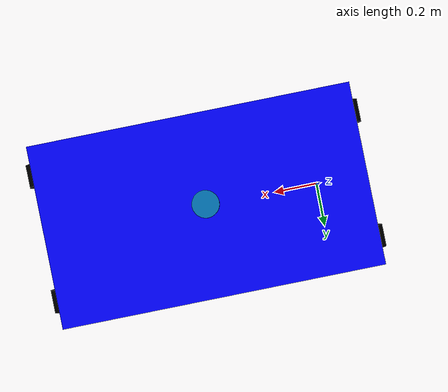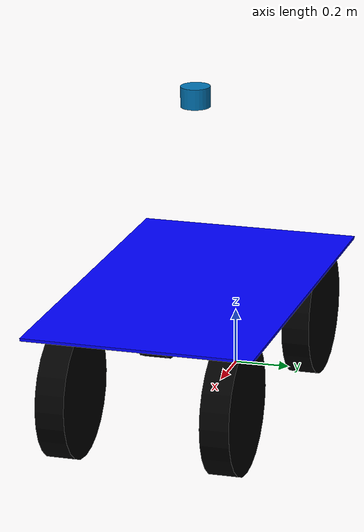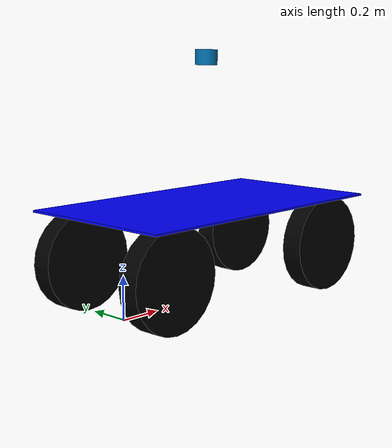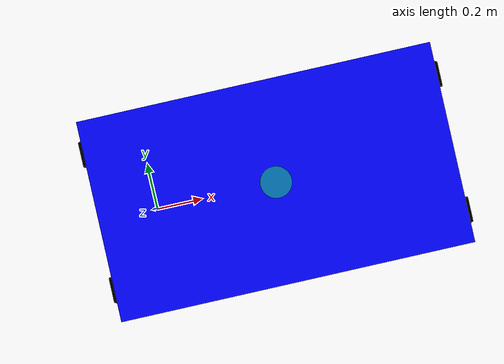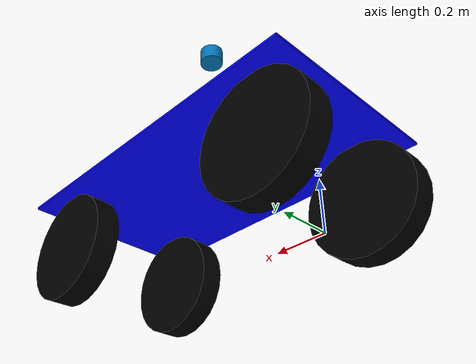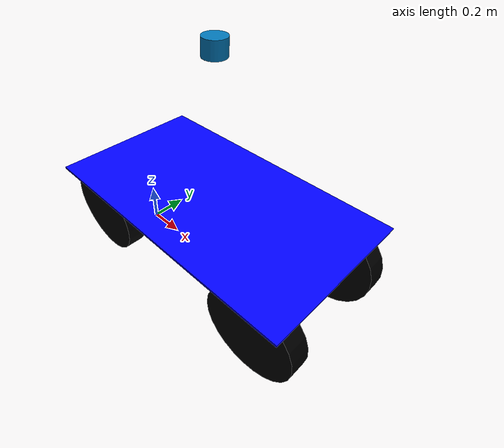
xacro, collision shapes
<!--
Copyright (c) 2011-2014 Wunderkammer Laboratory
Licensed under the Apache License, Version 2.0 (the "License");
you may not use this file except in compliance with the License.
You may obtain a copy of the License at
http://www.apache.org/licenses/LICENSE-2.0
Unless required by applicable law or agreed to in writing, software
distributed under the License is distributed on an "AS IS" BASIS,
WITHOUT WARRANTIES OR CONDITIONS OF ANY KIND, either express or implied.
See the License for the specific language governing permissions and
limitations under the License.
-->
<?xml version="1.0"?>

<robot name="em_3905" xmlns:xacro="http://www.ros.org/wiki/xacro">
  <!-- Degree-to-radian conversions -->
  <xacro:property name="degrees_45" value="0.785398163"/>
  <xacro:property name="degrees_90" value="1.57079633"/>

  <!-- chassis_length is measured along the x axis, chassis_width
       along the y axis, and chassis_height along the z axis. -->
  <xacro:property name="chassis_length" value="1.41"/>
  <xacro:property name="chassis_width" value="0.797"/>
  <xacro:property name="chassis_height" value="0.01"/>
  <xacro:property name="chassis_mass" value="2.788"/>

  <xacro:property name="hub_dia" value="0.32"/>
  <xacro:property name="tire_dia" value="0.46"/>
  <xacro:property name="tire_width" value="0.1"/>
  <xacro:property name="hex_hub_depth" value="0.02"/>
  <xacro:property name="wheel_mass" value="0.29"/>

  <xacro:property name="wheelbase" value="1.05"/>
  <xacro:property name="hex_hub_dist" value="0.625"/>
  <xacro:property name="axle_length" value="0.03"/>
  <xacro:property name="wheel_travel" value="0.46"/>
  <xacro:property name="shock_z_offset" value="0.0"/>

  <xacro:property name="shock_eff_limit" value="125.106"/>
  <xacro:property name="shock_vel_limit" value="1000"/>

  <xacro:property name="axle_eff_limit" value="51.2766"/>
  <xacro:property name="axle_vel_limit" value="244.8696"/>

  <!-- These constants are used to simulate a Traxxas 2056 servo operated at
       6 V. servo_stall_torque is measured in N m. servo_no_load_speed is
       measured in rad/s. -->
  <xacro:property name="servo_stall_torque" value="5.649"/>
  <xacro:property name="servo_no_load_speed" value="4.553"/>

  <material name="battery_mat">
    <color rgba="0 0 1 1"/>
  </material>
  <material name="chassis_mat">
    <color rgba="0 0 1 1"/>
  </material>
  <material name="tire_mat">
    <color rgba="0 0 0 1"/>
  </material>

  <!-- Null inertial element. This is needed to make the model work with
       Gazebo. -->
  <xacro:macro name="null_inertial">
    <inertial>
      <mass value="0.001"/>
      <inertia ixx="0.001" ixy="0" ixz="0" iyy="0.001" iyz="0" izz="0.001"/>
    </inertial>
  </xacro:macro>

  <!-- Inertia of a solid cuboid. Width is measured along the x axis, depth
       along the y axis, and height along the z axis. -->
  <xacro:macro name="solid_cuboid_inertial"
               params="width depth height mass *origin">
    <inertial>
      <xacro:insert_block name="origin"/>
      <mass value="${mass}"/>
      <inertia ixx="${mass * (depth * depth + height * height) / 12}"
               ixy="0" ixz="0"
               iyy="${mass * (width * width + height * height) / 12}"
               iyz="0"
               izz="${mass * (width * width + depth * depth) / 12}"/>
    </inertial>
  </xacro:macro>

  <xacro:macro name="thick_walled_tube_inertial"
               params="inner_rad outer_rad height mass">
    <inertial>
      <mass value="${mass}"/>
      <inertia ixx="${(1 / 12) * mass * (3 * (inner_rad * inner_rad +
                    outer_rad * outer_rad) + height * height)}"
               ixy="0" ixz="0"
               iyy="${(1 / 12) * mass * (3 * (inner_rad * inner_rad +
                    outer_rad * outer_rad) + height * height)}"
               iyz="0"
               izz="${mass * (inner_rad * inner_rad +
                    outer_rad * outer_rad) / 2}"/>
    </inertial>
  </xacro:macro>

  <!-- Battery -->

  <!-- Shock absorber -->
  <xacro:macro name="shock"
               params="lr_prefix fr_prefix lr_reflect fr_reflect child">
    <joint name="${lr_prefix}_${fr_prefix}_shock" type="prismatic">
      <parent link="chassis"/>
      <child link="${child}"/>

      <origin xyz="${fr_reflect * wheelbase / 2 + wheelbase / 2}
                   ${lr_reflect * ((hex_hub_dist / 2) - axle_length)}
                   ${(wheel_travel / 2) - shock_z_offset}"/>
      <axis xyz="0 0 -1"/>
      <limit lower="${-wheel_travel / 2}" upper="${wheel_travel / 2}"
             effort="${shock_eff_limit}" velocity="${shock_vel_limit}"/>
    </joint>
    <transmission name="${lr_prefix}_${fr_prefix}_shock_trans">
      <type>transmission_interface/SimpleTransmission</type>
      <joint name="${lr_prefix}_${fr_prefix}_shock">
        <hardwareInterface>EffortJointInterface</hardwareInterface>
      </joint>
      <actuator name="${lr_prefix}_${fr_prefix}_shock_act">
        <!-- This hardwareInterface element exists for compatibility
             with ROS Hydro. -->
        <hardwareInterface>EffortJointInterface</hardwareInterface>
        <mechanicalReduction>1</mechanicalReduction>
      </actuator>
    </transmission>
  </xacro:macro>

  <!-- The "wheel" macro defines an axle carrier, axle, and wheel. -->
  <xacro:macro name="wheel" params="lr_prefix fr_prefix lr_reflect">
    <link name="${lr_prefix}_${fr_prefix}_axle_carrier">
      <xacro:null_inertial/>
    </link>

    <!-- The left and right axles have the same axis so that identical
         rotation values cause the wheels to rotate in the same direction. -->
    <joint name="${lr_prefix}_${fr_prefix}_axle" type="continuous">
      <parent link="${lr_prefix}_${fr_prefix}_axle_carrier"/>
      <child link="${lr_prefix}_${fr_prefix}_wheel"/>
      <origin rpy="${degrees_90} 0 0"/>
      <axis xyz="0 0 -1"/>
      <limit effort="${axle_eff_limit}" velocity="${axle_vel_limit}"/>
    </joint>
    <transmission name="${lr_prefix}_${fr_prefix}_axle_trans">
      <type>transmission_interface/SimpleTransmission</type>
      <joint name="${lr_prefix}_${fr_prefix}_axle">
        <hardwareInterface>EffortJointInterface</hardwareInterface>
      </joint>
      <actuator name="${lr_prefix}_${fr_prefix}_axle_act">
        <!-- This hardwareInterface element exists for compatibility
             with ROS Hydro. -->
        <hardwareInterface>EffortJointInterface</hardwareInterface>
        <mechanicalReduction>1</mechanicalReduction>
      </actuator>
    </transmission>

    <link name="${lr_prefix}_${fr_prefix}_wheel">
      <visual>
        <origin xyz="0
                     ${lr_reflect * (axle_length - (tire_width /
                     2 - hex_hub_depth))}
                     0"/>
        <geometry>
          <cylinder radius="${tire_dia / 2}" length="${tire_width}"/>
        </geometry>
        <material name="tire_mat"/>
      </visual>

      <collision>
        <origin xyz="0
                     ${lr_reflect * (axle_length - (tire_width /
                     2 - hex_hub_depth))}
                     0"/>
        <geometry>
          <cylinder radius="${tire_dia / 2}" length="${tire_width}"/>
        </geometry>
      </collision>

      <xacro:thick_walled_tube_inertial
          inner_rad="${hub_dia / 2}" outer_rad="${tire_dia / 2}"
          height="${tire_width}" mass="${wheel_mass}"/>
    </link>

    <gazebo reference="${lr_prefix}_${fr_prefix}_wheel">
      <material>Gazebo/Black</material>
    </gazebo>
  </xacro:macro>

  <!-- Front wheel -->
  <xacro:macro name="front_wheel"
               params="lr_prefix fr_prefix lr_reflect fr_reflect">
    <xacro:shock lr_prefix="${lr_prefix}" fr_prefix="${fr_prefix}"
                 lr_reflect="${lr_reflect}" fr_reflect="${fr_reflect}"
                 child="${lr_prefix}_steering_link"/>

    <link name="${lr_prefix}_steering_link">
      <xacro:null_inertial/>
    </link>

    <joint name="${lr_prefix}_steering_joint" type="revolute">
      <parent link="${lr_prefix}_steering_link"/>
      <child link="${lr_prefix}_${fr_prefix}_axle_carrier"/>
      <axis xyz="0 0 1"/>
      <limit lower="${-degrees_45}" upper="${degrees_45}"
             effort="${servo_stall_torque}" velocity="${servo_no_load_speed}"/>
    </joint>
    <transmission name="${lr_prefix}_steering_trans">
      <type>transmission_interface/SimpleTransmission</type>
      <joint name="${lr_prefix}_steering_joint">
        <hardwareInterface>EffortJointInterface</hardwareInterface>
      </joint>
      <actuator name="${lr_prefix}_steering_act">
        <!-- This hardwareInterface element exists for compatibility
             with ROS Hydro. -->
        <hardwareInterface>EffortJointInterface</hardwareInterface>
        <mechanicalReduction>1</mechanicalReduction>
      </actuator>
    </transmission>

    <xacro:wheel lr_prefix="${lr_prefix}" fr_prefix="${fr_prefix}"
                 lr_reflect="${lr_reflect}"/>
  </xacro:macro>

  <!-- Rear wheel -->
  <xacro:macro name="rear_wheel"
               params="lr_prefix fr_prefix lr_reflect fr_reflect">
    <xacro:shock lr_prefix="${lr_prefix}" fr_prefix="${fr_prefix}"
                 lr_reflect="${lr_reflect}" fr_reflect="${fr_reflect}"
                 child="${lr_prefix}_${fr_prefix}_axle_carrier"/>
    <xacro:wheel lr_prefix="${lr_prefix}" fr_prefix="${fr_prefix}"
                 lr_reflect="${lr_reflect}"/>
  </xacro:macro>

  <!-- base_link must have geometry so that its axes can be displayed in
       rviz. -->
  <link name="base_link">
    <visual>
      <geometry>
        <box size="0.01 0.01 0.01"/>
      </geometry>
      <material name="chassis_mat"/>
    </visual>
  </link>
  <gazebo reference="base_link">
    <material>Gazebo/Blue</material>
  </gazebo>

  <!-- Chassis -->
  <link name="chassis">
    <visual>
      <origin xyz="${wheelbase / 2} 0 ${wheel_travel}"/>
      <geometry>
        <box size="${chassis_length} ${chassis_width} ${chassis_height}"/>
      </geometry>
      <material name="chassis_mat"/>
    </visual>

    <collision>
      <origin xyz="${wheelbase / 2} 0 ${wheel_travel}"/>
      <geometry>
        <box size="${chassis_length} ${chassis_width} ${chassis_height}"/>
      </geometry>
    </collision>

    <xacro:solid_cuboid_inertial
        width="${chassis_length}" depth="${chassis_width}"
        height="${chassis_height}" mass="${chassis_mass}">
      <origin xyz="${wheelbase / 2} 0 ${wheel_travel}"/>
    </xacro:solid_cuboid_inertial>
  </link>
  <gazebo reference="chassis">
    <material>Gazebo/Blue</material>
  </gazebo>

  <joint name="base_link_to_chassis" type="fixed">
    <parent link="base_link"/>
    <child link="chassis"/>
  </joint>

  <!-- Batteries -->

  <!-- Wheels -->
  <xacro:front_wheel lr_prefix="left" fr_prefix="front"
                     lr_reflect="1" fr_reflect="1"/>
  <xacro:front_wheel lr_prefix="right" fr_prefix="front"
                     lr_reflect="-1" fr_reflect="1"/>
  <xacro:rear_wheel lr_prefix="left" fr_prefix="rear"
                    lr_reflect="1" fr_reflect="-1"/>
  <xacro:rear_wheel lr_prefix="right" fr_prefix="rear"
                    lr_reflect="-1" fr_reflect="-1"/>

  <xacro:include filename="$(find velodyne_description)/urdf/VLP-16.urdf.xacro"/>
  <xacro:VLP-16 parent="base_link" name="velodyne" topic="/velodyne_points" hz="10" samples="450" gpu="true">
    <origin xyz="${wheelbase / 2} 0 ${wheel_travel + 0.645}" rpy="0.01 0.02 0" />
  </xacro:VLP-16>

  <gazebo>
    <plugin name="gazebo_ros_control" filename="libgazebo_ros_control.so"/>
  </gazebo>

  <gazebo>
    <plugin filename="libhector_gazebo_ros_gps.so" name="gps" >
      <alwaysOn>true</alwaysOn>
      <updateRate>1.0</updateRate>
      <bodyName>base_link</bodyName>
      <topicName>fix</topicName>
      <velocityTopicName>fix_vel</velocityTopicName>
      <referenceLatitude>38.385</referenceLatitude>
      <referenceLongitude>-0.515</referenceLongitude>
      <drift>1.0 1.0 1.0</drift>
      <gaussianNoise>0.1 0.1 0.1</gaussianNoise>
      <velocityDrift>0 0 0</velocityDrift>
      <velocityGaussianNoise>0.1 0.1 0.1</velocityGaussianNoise>
    </plugin>
  </gazebo>

  <gazebo>
    <plugin filename="libgazebo_ros_diff_drive.so" name="differential_drive_controller">
      <alwaysOn>true</alwaysOn>
      <updateRate>20</updateRate>
      <leftJoint>right_rear_axle</leftJoint>
      <rightJoint>left_rear_axle</rightJoint>
      <wheelSeparation>0.62</wheelSeparation>
      <wheelDiameter>0.36</wheelDiameter>
      <torque>0.1</torque>
      <commandTopic>cmd_vel_aux</commandTopic>
      <odometryTopic>odom</odometryTopic>
      <odometryFrame>odom</odometryFrame>
      <robotBaseFrame>base_link</robotBaseFrame>
    </plugin>
  </gazebo>

  <gazebo>
    <plugin filename="libhector_gazebo_ros_imu.so" name="imu" >
      <alwaysOn>true</alwaysOn>
      <updateRate>10.0</updateRate>
      <bodyName>base_link</bodyName>
      <topicName>imu</topicName>
      <accelDrift>1.0 1.0 1.0</accelDrift>
      <rateDrift>1.0 1.0 1.0</rateDrift>
      <yawDrift>1.0</yawDrift>
      <gaussianNoise>0.1</gaussianNoise>
    </plugin>
  </gazebo>

</robot>

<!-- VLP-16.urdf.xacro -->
<robot xmlns:xacro="http://www.ros.org/wiki/xacro" name="VLP-16">
  <xacro:property name="M_PI" value="3.1415926535897931" />
  <xacro:macro name="VLP-16" params="*origin is_sim:=true parent:=base_link name:=velodyne tf_prefix:='' topic:=/velodyne_points organize_cloud:=false hz:=10 lasers:=16 samples:=1875 collision_range:=0.3 min_range:=0.0 max_range:=100.0 noise:=0.008 min_angle:=-${M_PI} max_angle:=${M_PI} gpu:=false">

    <joint name="${name}_base_mount_joint" type="fixed">
      <xacro:insert_block name="origin" />
      <parent link="${parent}"/>
      <child link="${name}_base_link"/>
    </joint>

    <link name="${name}_base_link">
      <inertial>
        <mass value="0.83"/>
        <origin xyz="0 0 0.03585"/>
        <inertia ixx="${(0.83 * (3.0*0.0516*0.0516 + 0.0717*0.0717)) / 12.0}" ixy="0" ixz="0"
          iyy="${(0.83 * (3.0*0.0516*0.0516 + 0.0717*0.0717)) / 12.0}" iyz="0"
          izz="${0.5 * 0.83 * (0.0516*0.0516)}"/>
      </inertial>
      <visual>
        <geometry>
          <mesh filename="package://velodyne_description/meshes/VLP16_base_1.dae" />
        </geometry>
      </visual>
      <visual>
        <geometry>
          <mesh filename="package://velodyne_description/meshes/VLP16_base_2.dae" />
        </geometry>
      </visual>
      <collision>
        <origin rpy="0 0 0" xyz="0 0 0.03585"/>
        <geometry>
          <cylinder radius="0.0516" length="0.0717"/>
        </geometry>
      </collision>
    </link>

    <joint name="${name}_base_scan_joint" type="fixed" >
      <origin xyz="0 0 0.0377" rpy="0 0 0" />
      <parent link="${name}_base_link" />
      <child link="${name}"/>
    </joint>

    <link name="${name}">
      <inertial>
        <mass value="0.01"/>
        <origin xyz="0 0 0"/>
        <inertia ixx="1e-7" ixy="0" ixz="0" iyy="1e-7" iyz="0" izz="1e-7"/>
      </inertial>
      <visual>
        <origin xyz="0 0 -0.0377" />
        <geometry>
          <mesh filename="package://velodyne_description/meshes/VLP16_scan.dae" />
        </geometry>
      </visual>
      <collision>
        <geometry>
          <sphere radius="0"/>
        </geometry>
      </collision>
    </link>

    <!-- Gazebo requires the velodyne_gazebo_plugins package -->
    <xacro:if value="${is_sim}">
        <gazebo reference="${name}">
            <xacro:if value="${gpu}">
                <sensor type="gpu_ray" name="${name}-VLP16">
                <pose>0 0 0 0 0 0</pose>
                <visualize>false</visualize>
                <update_rate>${hz}</update_rate>
                <ray>
                    <scan>
                    <horizontal>
                        <samples>${samples}</samples>
                        <resolution>1</resolution>
                        <min_angle>${min_angle}</min_angle>
                        <max_angle>${max_angle}</max_angle>
                    </horizontal>
                    <vertical>
                        <samples>${lasers}</samples>
                        <resolution>1</resolution>
                        <min_angle>-${15.0*M_PI/180.0}</min_angle>
                        <max_angle> ${15.0*M_PI/180.0}</max_angle>
                    </vertical>
                    </scan>
                    <range>
                    <min>${collision_range}</min>
                    <max>${max_range+1}</max>
                    <resolution>0.001</resolution>
                    </range>
                    <noise>
                    <type>gaussian</type>
                    <mean>0.0</mean>
                    <stddev>0.0</stddev>
                    </noise>
                </ray>
                <plugin name="gazebo_ros_laser_controller" filename="libgazebo_ros_velodyne_laser.so">
                    <ros>
                    <namespace>/${name}</namespace>
                    <remapping>~/out:=${topic}</remapping>
                    </ros>
                    <tf_prefix>${tf_prefix}</tf_prefix>
                    <frame_name>${name}</frame_name>
                    <organize_cloud>${organize_cloud}</organize_cloud>
                    <min_range>${min_range}</min_range>
                    <max_range>${max_range}</max_range>
                    <gaussian_noise>${noise}</gaussian_noise>
                </plugin>
                </sensor>
            </xacro:if>
            <xacro:unless value="${gpu}">
                <sensor type="ray" name="${name}-VLP16">
                <pose>0 0 0 0 0 0</pose>
                <visualize>false</visualize>
                <update_rate>${hz}</update_rate>
                <ray>
                    <scan>
                    <horizontal>
                        <samples>${samples}</samples>
                        <resolution>1</resolution>
                        <min_angle>${min_angle}</min_angle>
                        <max_angle>${max_angle}</max_angle>
                    </horizontal>
                    <vertical>
                        <samples>${lasers}</samples>
                        <resolution>1</resolution>
                        <min_angle>-${15.0*M_PI/180.0}</min_angle>
                        <max_angle> ${15.0*M_PI/180.0}</max_angle>
                    </vertical>
                    </scan>
                    <range>
                    <min>${collision_range}</min>
                    <max>${max_range+1}</max>
                    <resolution>0.001</resolution>
                    </range>
                    <noise>
                    <type>gaussian</type>
                    <mean>0.0</mean>
                    <stddev>0.0</stddev>
                    </noise>
                </ray>
                <plugin name="gazebo_ros_laser_controller" filename="libgazebo_ros_velodyne_laser.so">
                    <ros>
                    <namespace>/${name}</namespace>
                    <remapping>~/out:=${topic}</remapping>
                    </ros>
                    <tf_prefix>${tf_prefix}</tf_prefix>
                    <frame_name>${name}</frame_name>
                    <organize_cloud>${organize_cloud}</organize_cloud>
                    <min_range>${min_range}</min_range>
                    <max_range>${max_range}</max_range>
                    <gaussian_noise>${noise}</gaussian_noise>
                </plugin>
                </sensor>
            </xacro:unless>
        </gazebo>
    </xacro:if>

  </xacro:macro>
</robot>
